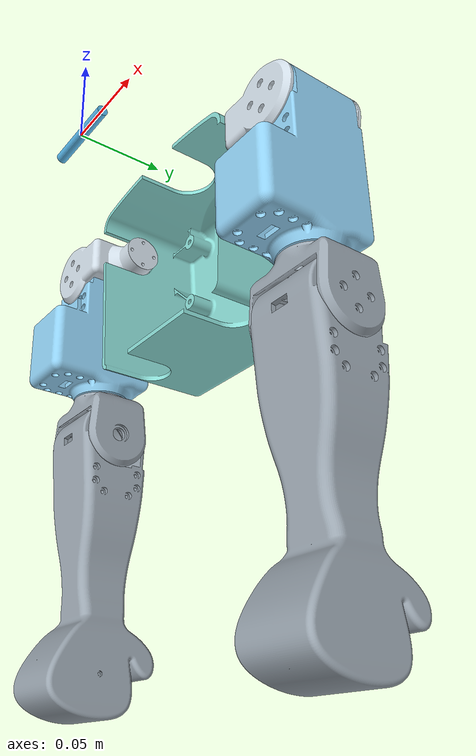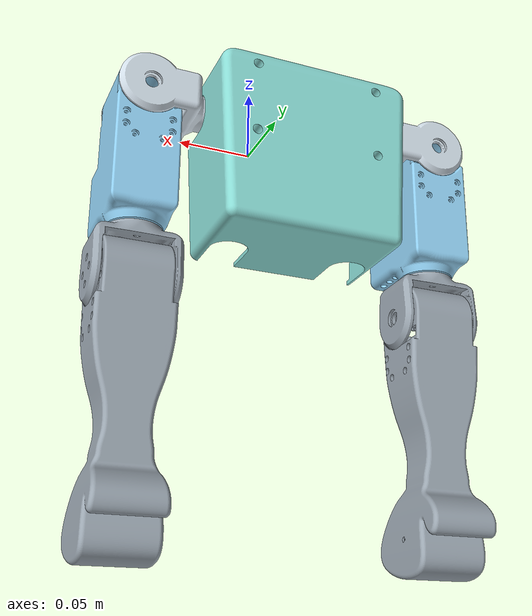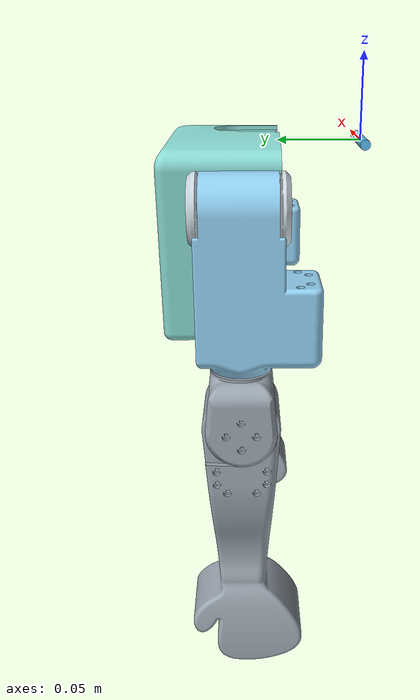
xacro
<?xml version="1.0"?>
<robot name="lilFlo"  xmlns:xacro="http://ros.org/wiki/xacro">

    <!--Macros-->
    <xacro:property name="mesh_extension" value="dae" />

    <xacro:macro name="add_mesh" params="file_name xyz:='0 0 0' rpy:='0 0 0'">
        <visual>
            <origin xyz="${xyz}" rpy="${rpy}"/>
            <geometry>
                <mesh filename="package://flo_humanoid/urdf/CAD_refs/${file_name}.${mesh_extension}"/>
            </geometry>
        </visual>
    </xacro:macro>

    <xacro:macro name="default_inertial" params="mass">
        <inertial>
            <mass value="${mass}" />
            <inertia ixx="1.0" ixy="0.0" ixz="0.0" iyy="1.0" iyz="0.0" izz="1.0" />
        </inertial>
    </xacro:macro>

    <!--Core of robot-->
    <link name="base_link"/>

    <link name="hang_bar">
        <visual>
            <origin rpy="0 ${pi/2} 0"/>
            <geometry>
                <cylinder length=".046" radius="0.0029972"/>
            </geometry>
        </visual>
    </link>

    <joint name="bar2base" type="fixed">
        <parent link="base_link"/>
        <child link="hang_bar"/>
    </joint>

    <!--chest-->
    <link name="chest">
        <xacro:add_mesh file_name="BODY - FLO-CHEST-01"/>
    </link>

    <joint name="chest_ref" type="fixed">
        <parent link="hang_bar"/>
        <child link="chest"/>
        <origin xyz="-0.04660000 .0720 -0.04351694" rpy="0 ${pi/2} ${pi}"/>
    </joint>

    <!--Left Arm-->
    <link name="left_shoulder">
        <xacro:add_mesh file_name="FLO-ARM-01 UPPER ARM MOUNT - FLO-ARM-LEFT-01 UPPER ARM MOUNT" rpy="0 ${pi/2} 0"/>
    </link>

    <joint name="left_shoulder_flexionextension" type="revolute">
        <axis xyz="0 0 1"/>
        <limit effort="1000.0" lower="0.0" upper="2.5" velocity="0.5"/>
        <parent link="hang_bar"/>
        <child link="left_shoulder"/>
        <origin xyz="-0.04965 .072  -.02153" rpy="${pi/2} 0 ${-pi/2}"/>
    </joint>

    <link name="left_upperarm">
        <xacro:add_mesh file_name="FLO-ARM-02 MIDDLE ARM DOUBLE MOUNT-LEFT" xyz="-0.00250 -0.04318000 000" rpy="${-pi/2} ${pi/2} 0"/>
    </link>

    <joint name="left_shoulder_abduction" type="revolute">
        <axis xyz="0 0 1"/>
        <limit effort="1000.0" lower="0.0" upper="2.5" velocity="0.5"/>
        <parent link="left_shoulder"/>
        <child link="left_upperarm"/>
        <origin xyz="0 0 .04572" rpy="${pi/2} 0 ${-pi/2}"/>
    </joint>

    <link name="left_elbow">
        <xacro:add_mesh file_name="FLO-ARM-04 MID ARM CONNECTOR - FLO-ARM-LEFT-04 MID ARM CONNECTOR" rpy="0 ${pi/2} ${pi/2}"/>
    </link>

    <joint name="left_shoulder_rotation" type="revolute">
        <axis xyz="0 0 1"/>
        <limit effort="1000.0" lower="0.0" upper="2.5" velocity="0.5"/>
        <parent link="left_upperarm"/>
        <child link="left_elbow"/>
        <origin xyz="0.07951 0 0" rpy="${pi/2} 0 ${pi/2}"/>
    </joint>

    <link name="left_forearm">
        <xacro:add_mesh file_name="FLO LOWER ARM - LEFT" xyz="0.01071292 0 0" rpy="${pi} 0 0"/>
    </link>

    <joint name="left_elbow_flexionextension" type="revolute">
        <axis xyz="0 0 1"/>
        <limit effort="1000.0" lower="0.0" upper="2.5" velocity="0.5"/>
        <parent link="left_elbow"/>
        <child link="left_forearm"/>
        <origin xyz="0 0 0.03442" rpy="0 ${-pi/2} 0"/>
    </joint>

    <!--Right Arm-->
    <link name="right_shoulder">
        <xacro:add_mesh file_name="FLO-ARM-01 UPPER ARM MOUNT - FLO-ARM-RIGHT-01 UPPER ARM MOUNT" rpy="0 ${pi/2} 0"/>
    </link>

    <joint name="right_shoulder_flexionextension" type="revolute">
        <axis xyz="0 0 1"/>
        <limit effort="1000.0" lower="0.0" upper="2.5" velocity="0.5"/>
        <parent link="hang_bar"/>
        <child link="right_shoulder"/>
        <origin xyz="0.04965 .072  -.02153" rpy="${pi/2} 0 ${-pi/2}"/>
    </joint>

    <link name="right_upperarm">
        <xacro:add_mesh file_name="FLO-ARM-02 MIDDLE ARM DOUBLE MOUNT-RIGHT" xyz="0.00250 -0.04318000 000" rpy="${pi/2} ${pi/2} 0"/>
    </link>

    <joint name="right_shoulder_abduction" type="revolute">
        <axis xyz="0 0 -1"/>
        <limit effort="1000.0" lower="0.0" upper="2.5" velocity="0.5"/>
        <parent link="right_shoulder"/>
        <child link="right_upperarm"/>
        <origin xyz="0 0 -.04572" rpy="${-pi/2} 0 ${pi/2}"/>
    </joint>

    <link name="right_elbow">
        <xacro:add_mesh file_name="FLO-ARM-04 MID ARM CONNECTOR - FLO-ARM-RIGHT-04 MID ARM CONNECTOR" rpy="0 ${pi/2} ${pi/2}"/>
    </link>

    <joint name="right_shoulder_rotation" type="revolute">
        <axis xyz="0 0 1"/>
        <limit effort="1000.0" lower="0.0" upper="2.5" velocity="0.5"/>
        <parent link="right_upperarm"/>
        <child link="right_elbow"/>
        <origin xyz="-0.07951 0 0" rpy="${pi/2} 0 ${pi/2}"/>
    </joint>

    <link name="right_forearm">
        <xacro:add_mesh file_name="FLO LOWER ARM - RIGHT" xyz="-0.01071292 0 0.11378887" rpy="${pi} ${pi} 0"/>
    </link>

    <joint name="right_elbow_flexionextension" type="revolute">
        <axis xyz="0 0 -1"/>
        <limit effort="1000.0" lower="0.0" upper="2.5" velocity="0.5"/>
        <parent link="right_elbow"/>
        <child link="right_forearm"/>
        <origin xyz="0 0 -0.03442" rpy="0 ${-pi/2} 0"/>
    </joint>

</robot>
